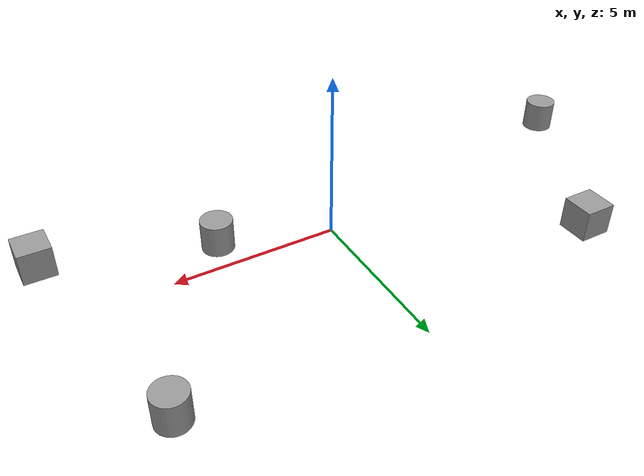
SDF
<?xml version='1.0'?>
<sdf version='1.7'>
  <model name='models'>
    <link name='link_3'>
      <inertial>
        <mass>1</mass>
        <inertia>
          <ixx>0.166667</ixx>
          <ixy>0</ixy>
          <ixz>0</ixz>
          <iyy>0.166667</iyy>
          <iyz>0</iyz>
          <izz>0.166667</izz>
        </inertia>
      </inertial>
      <pose>-7.25963 3.18065 0 0 -0 0</pose>
      <visual name='visual'>
        <pose>0 0 0 0 -0 0</pose>
        <geometry>
          <box>
            <size>1 1 1</size>
          </box>
        </geometry>
        <material>
          <lighting>1</lighting>
          <script>
            <uri>file://media/materials/scripts/gazebo.material</uri>
            <name>Gazebo/Grey</name>
          </script>
          <shader type='pixel'/>
        </material>
        <transparency>0</transparency>
        <cast_shadows>1</cast_shadows>
      </visual>
      <collision name='collision'>
        <laser_retro>0</laser_retro>
        <max_contacts>10</max_contacts>
        <pose>0 0 0 0 -0 0</pose>
        <geometry>
          <box>
            <size>1 1 1</size>
          </box>
        </geometry>
        <surface>
          <friction>
            <ode>
              <mu>1</mu>
              <mu2>1</mu2>
              <fdir1>0 0 0</fdir1>
              <slip1>0</slip1>
              <slip2>0</slip2>
            </ode>
            <torsional>
              <coefficient>1</coefficient>
              <patch_radius>0</patch_radius>
              <surface_radius>0</surface_radius>
              <use_patch_radius>1</use_patch_radius>
              <ode>
                <slip>0</slip>
              </ode>
            </torsional>
          </friction>
          <bounce>
            <restitution_coefficient>0</restitution_coefficient>
            <threshold>1e+06</threshold>
          </bounce>
          <contact>
            <collide_without_contact>0</collide_without_contact>
            <collide_without_contact_bitmask>1</collide_without_contact_bitmask>
            <collide_bitmask>1</collide_bitmask>
            <ode>
              <soft_cfm>0</soft_cfm>
              <soft_erp>0.2</soft_erp>
              <kp>1e+13</kp>
              <kd>1</kd>
              <max_vel>0.01</max_vel>
              <min_depth>0</min_depth>
            </ode>
            <bullet>
              <split_impulse>1</split_impulse>
              <split_impulse_penetration_threshold>-0.01</split_impulse_penetration_threshold>
              <soft_cfm>0</soft_cfm>
              <soft_erp>0.2</soft_erp>
              <kp>1e+13</kp>
              <kd>1</kd>
            </bullet>
          </contact>
        </surface>
      </collision>
    </link>
    <link name='link_4'>
      <inertial>
        <mass>1</mass>
        <inertia>
          <ixx>0.145833</ixx>
          <ixy>0</ixy>
          <ixz>0</ixz>
          <iyy>0.145833</iyy>
          <iyz>0</iyz>
          <izz>0.125</izz>
        </inertia>
      </inertial>
      <pose>3.04149 -1.55356 0 0 -0 0</pose>
      <visual name='visual'>
        <pose>0 0 0 0 -0 0</pose>
        <geometry>
          <cylinder>
            <radius>0.5</radius>
            <length>1</length>
          </cylinder>
        </geometry>
        <material>
          <lighting>1</lighting>
          <script>
            <uri>file://media/materials/scripts/gazebo.material</uri>
            <name>Gazebo/Grey</name>
          </script>
          <shader type='pixel'/>
        </material>
        <transparency>0</transparency>
        <cast_shadows>1</cast_shadows>
      </visual>
      <collision name='collision'>
        <laser_retro>0</laser_retro>
        <max_contacts>10</max_contacts>
        <pose>0 0 0 0 -0 0</pose>
        <geometry>
          <cylinder>
            <radius>0.5</radius>
            <length>1</length>
          </cylinder>
        </geometry>
        <surface>
          <friction>
            <ode>
              <mu>1</mu>
              <mu2>1</mu2>
              <fdir1>0 0 0</fdir1>
              <slip1>0</slip1>
              <slip2>0</slip2>
            </ode>
            <torsional>
              <coefficient>1</coefficient>
              <patch_radius>0</patch_radius>
              <surface_radius>0</surface_radius>
              <use_patch_radius>1</use_patch_radius>
              <ode>
                <slip>0</slip>
              </ode>
            </torsional>
          </friction>
          <bounce>
            <restitution_coefficient>0</restitution_coefficient>
            <threshold>1e+06</threshold>
          </bounce>
          <contact>
            <collide_without_contact>0</collide_without_contact>
            <collide_without_contact_bitmask>1</collide_without_contact_bitmask>
            <collide_bitmask>1</collide_bitmask>
            <ode>
              <soft_cfm>0</soft_cfm>
              <soft_erp>0.2</soft_erp>
              <kp>1e+13</kp>
              <kd>1</kd>
              <max_vel>0.01</max_vel>
              <min_depth>0</min_depth>
            </ode>
            <bullet>
              <split_impulse>1</split_impulse>
              <split_impulse_penetration_threshold>-0.01</split_impulse_penetration_threshold>
              <soft_cfm>0</soft_cfm>
              <soft_erp>0.2</soft_erp>
              <kp>1e+13</kp>
              <kd>1</kd>
            </bullet>
          </contact>
        </surface>
      </collision>
    </link>
    <link name='link_5'>
      <inertial>
        <mass>1</mass>
        <inertia>
          <ixx>0.145833</ixx>
          <ixy>0</ixy>
          <ixz>0</ixz>
          <iyy>0.145833</iyy>
          <iyz>0</iyz>
          <izz>0.125</izz>
        </inertia>
      </inertial>
      <pose>6.6189 4.03543 0 0 -0 0</pose>
      <visual name='visual'>
        <pose>0 0 0 0 -0 0</pose>
        <geometry>
          <cylinder>
            <radius>0.5</radius>
            <length>1</length>
          </cylinder>
        </geometry>
        <material>
          <lighting>1</lighting>
          <script>
            <uri>file://media/materials/scripts/gazebo.material</uri>
            <name>Gazebo/Grey</name>
          </script>
          <shader type='pixel'/>
        </material>
        <transparency>0</transparency>
        <cast_shadows>1</cast_shadows>
      </visual>
      <collision name='collision'>
        <laser_retro>0</laser_retro>
        <max_contacts>10</max_contacts>
        <pose>0 0 0 0 -0 0</pose>
        <geometry>
          <cylinder>
            <radius>0.5</radius>
            <length>1</length>
          </cylinder>
        </geometry>
        <surface>
          <friction>
            <ode>
              <mu>1</mu>
              <mu2>1</mu2>
              <fdir1>0 0 0</fdir1>
              <slip1>0</slip1>
              <slip2>0</slip2>
            </ode>
            <torsional>
              <coefficient>1</coefficient>
              <patch_radius>0</patch_radius>
              <surface_radius>0</surface_radius>
              <use_patch_radius>1</use_patch_radius>
              <ode>
                <slip>0</slip>
              </ode>
            </torsional>
          </friction>
          <bounce>
            <restitution_coefficient>0</restitution_coefficient>
            <threshold>1e+06</threshold>
          </bounce>
          <contact>
            <collide_without_contact>0</collide_without_contact>
            <collide_without_contact_bitmask>1</collide_without_contact_bitmask>
            <collide_bitmask>1</collide_bitmask>
            <ode>
              <soft_cfm>0</soft_cfm>
              <soft_erp>0.2</soft_erp>
              <kp>1e+13</kp>
              <kd>1</kd>
              <max_vel>0.01</max_vel>
              <min_depth>0</min_depth>
            </ode>
            <bullet>
              <split_impulse>1</split_impulse>
              <split_impulse_penetration_threshold>-0.01</split_impulse_penetration_threshold>
              <soft_cfm>0</soft_cfm>
              <soft_erp>0.2</soft_erp>
              <kp>1e+13</kp>
              <kd>1</kd>
            </bullet>
          </contact>
        </surface>
      </collision>
    </link>
    <link name='link_6'>
      <inertial>
        <mass>1</mass>
        <inertia>
          <ixx>0.166667</ixx>
          <ixy>0</ixy>
          <ixz>0</ixz>
          <iyy>0.166667</iyy>
          <iyz>0</iyz>
          <izz>0.166667</izz>
        </inertia>
      </inertial>
      <pose>8.09435 -3.10436 0 0 -0 0</pose>
      <visual name='visual'>
        <pose>0 0 0 0 -0 0</pose>
        <geometry>
          <box>
            <size>1 1 1</size>
          </box>
        </geometry>
        <material>
          <lighting>1</lighting>
          <script>
            <uri>file://media/materials/scripts/gazebo.material</uri>
            <name>Gazebo/Grey</name>
          </script>
          <shader type='pixel'/>
        </material>
        <transparency>0</transparency>
        <cast_shadows>1</cast_shadows>
      </visual>
      <collision name='collision'>
        <laser_retro>0</laser_retro>
        <max_contacts>10</max_contacts>
        <pose>0 0 0 0 -0 0</pose>
        <geometry>
          <box>
            <size>1 1 1</size>
          </box>
        </geometry>
        <surface>
          <friction>
            <ode>
              <mu>1</mu>
              <mu2>1</mu2>
              <fdir1>0 0 0</fdir1>
              <slip1>0</slip1>
              <slip2>0</slip2>
            </ode>
            <torsional>
              <coefficient>1</coefficient>
              <patch_radius>0</patch_radius>
              <surface_radius>0</surface_radius>
              <use_patch_radius>1</use_patch_radius>
              <ode>
                <slip>0</slip>
              </ode>
            </torsional>
          </friction>
          <bounce>
            <restitution_coefficient>0</restitution_coefficient>
            <threshold>1e+06</threshold>
          </bounce>
          <contact>
            <collide_without_contact>0</collide_without_contact>
            <collide_without_contact_bitmask>1</collide_without_contact_bitmask>
            <collide_bitmask>1</collide_bitmask>
            <ode>
              <soft_cfm>0</soft_cfm>
              <soft_erp>0.2</soft_erp>
              <kp>1e+13</kp>
              <kd>1</kd>
              <max_vel>0.01</max_vel>
              <min_depth>0</min_depth>
            </ode>
            <bullet>
              <split_impulse>1</split_impulse>
              <split_impulse_penetration_threshold>-0.01</split_impulse_penetration_threshold>
              <soft_cfm>0</soft_cfm>
              <soft_erp>0.2</soft_erp>
              <kp>1e+13</kp>
              <kd>1</kd>
            </bullet>
          </contact>
        </surface>
      </collision>
    </link>
    <link name='link_8'>
      <inertial>
        <mass>1</mass>
        <inertia>
          <ixx>0.145833</ixx>
          <ixy>0</ixy>
          <ixz>0</ixz>
          <iyy>0.145833</iyy>
          <iyz>0</iyz>
          <izz>0.125</izz>
        </inertia>
      </inertial>
      <pose>-10.4952 -2.55818 0 0 -0 0</pose>
      <visual name='visual'>
        <pose>0 0 0 0 -0 0</pose>
        <geometry>
          <cylinder>
            <radius>0.5</radius>
            <length>1</length>
          </cylinder>
        </geometry>
        <material>
          <lighting>1</lighting>
          <script>
            <uri>file://media/materials/scripts/gazebo.material</uri>
            <name>Gazebo/Grey</name>
          </script>
          <shader type='pixel'/>
        </material>
        <transparency>0</transparency>
        <cast_shadows>1</cast_shadows>
      </visual>
      <collision name='collision'>
        <laser_retro>0</laser_retro>
        <max_contacts>10</max_contacts>
        <pose>0 0 0 0 -0 0</pose>
        <geometry>
          <cylinder>
            <radius>0.5</radius>
            <length>1</length>
          </cylinder>
        </geometry>
        <surface>
          <friction>
            <ode>
              <mu>1</mu>
              <mu2>1</mu2>
              <fdir1>0 0 0</fdir1>
              <slip1>0</slip1>
              <slip2>0</slip2>
            </ode>
            <torsional>
              <coefficient>1</coefficient>
              <patch_radius>0</patch_radius>
              <surface_radius>0</surface_radius>
              <use_patch_radius>1</use_patch_radius>
              <ode>
                <slip>0</slip>
              </ode>
            </torsional>
          </friction>
          <bounce>
            <restitution_coefficient>0</restitution_coefficient>
            <threshold>1e+06</threshold>
          </bounce>
          <contact>
            <collide_without_contact>0</collide_without_contact>
            <collide_without_contact_bitmask>1</collide_without_contact_bitmask>
            <collide_bitmask>1</collide_bitmask>
            <ode>
              <soft_cfm>0</soft_cfm>
              <soft_erp>0.2</soft_erp>
              <kp>1e+13</kp>
              <kd>1</kd>
              <max_vel>0.01</max_vel>
              <min_depth>0</min_depth>
            </ode>
            <bullet>
              <split_impulse>1</split_impulse>
              <split_impulse_penetration_threshold>-0.01</split_impulse_penetration_threshold>
              <soft_cfm>0</soft_cfm>
              <soft_erp>0.2</soft_erp>
              <kp>1e+13</kp>
              <kd>1</kd>
            </bullet>
          </contact>
        </surface>
      </collision>
    </link>
    <static>0</static>
    <allow_auto_disable>1</allow_auto_disable>
  </model>
</sdf>
